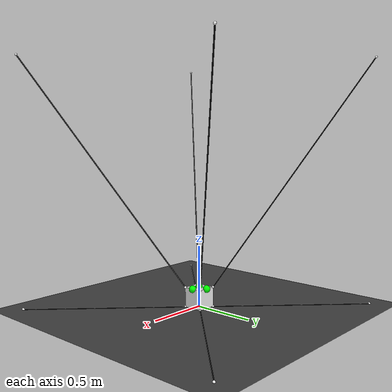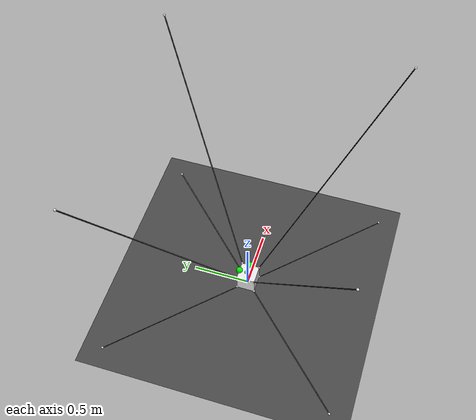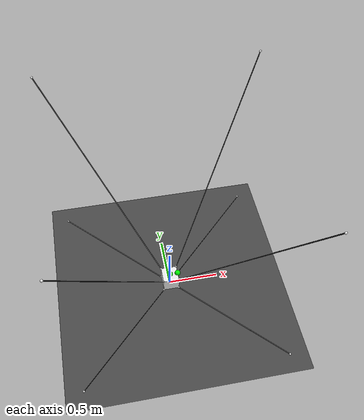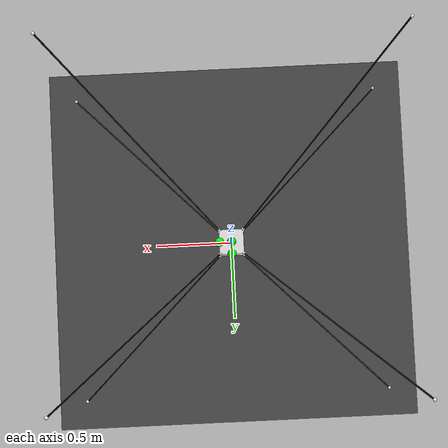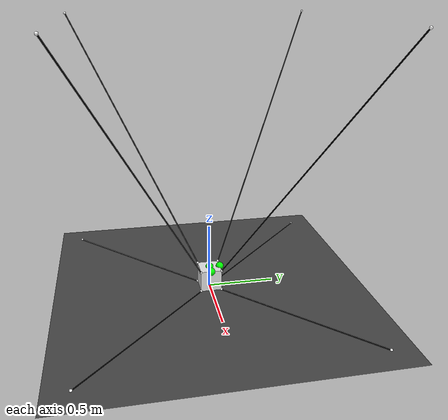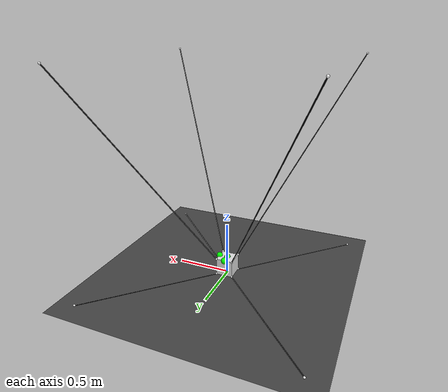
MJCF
<mujoco model="cdpr_8_cables_6_dof">
  <compiler angle="radian"/>

  <asset>
    <texture type="2d" colorspace="auto" name="texplane" builtin="checker" mark="cross" rgb1="0.25 0.25 0.25" rgb2="0.3 0.3 0.3" markrgb="0.8 0.8 0.8" width="512" height="512"/>
    <material name="matplane" texture="texplane" texuniform="true" reflectance="0.3"/>
  </asset>

  <worldbody>
    <geom name="floor" size="0 0 1" type="plane" material="matplane"/>
    <site name="proximal_anchor_0" pos="-1.005 1.01 0" size="0.01" rgba="1 1 1 1"/>
    <site name="proximal_anchor_1" pos="1.005 1.01 0" size="0.01" rgba="1 1 1 1"/>
    <site name="proximal_anchor_2" pos="1.005 -1.01 0" size="0.01" rgba="1 1 1 1"/>
    <site name="proximal_anchor_3" pos="-1.005 -1.01 0" size="0.01" rgba="1 1 1 1"/>
    <site name="proximal_anchor_4" pos="-1.005 1.01 2.03" size="0.01" rgba="1 1 1 1"/>
    <site name="proximal_anchor_5" pos="1.005 1.01 2.03" size="0.01" rgba="1 1 1 1"/>
    <site name="proximal_anchor_6" pos="1.005 -1.01 2.03" size="0.01" rgba="1 1 1 1"/>
    <site name="proximal_anchor_7" pos="-1.005 -1.01 2.03" size="0.01" rgba="1 1 1 1"/>
    <camera name="main_camera" pos="0 -3.535 3.5525" quat="0.92388 0.382683 0 0"/>
    <camera name="left_camera" pos="-1.005 0 4.669"/>
    <camera name="right_camera" pos="1.005 0 4.669"/>
    <light pos="0 0 0" dir="0 0 -1" type="directional" diffuse="0.8 0.8 0.8" specular="0.2 0.2 0.2"/>
    <body name="end_effector" pos="0 0 0.081">
      <joint type="free" limited="false" actuatorfrclimited="false"/>
      <geom size="0.08 0.0805 0.081" type="box" mass="2" rgba="0.9 0.9 0.9 1"/>
      <site name="distal_anchor_0" pos="-0.08 0.0805 -0.081" size="0.01" rgba="1 1 1 1"/>
      <site name="distal_anchor_1" pos="0.08 0.0805 -0.081" size="0.01" rgba="1 1 1 1"/>
      <site name="distal_anchor_2" pos="0.08 -0.0805 -0.081" size="0.01" rgba="1 1 1 1"/>
      <site name="distal_anchor_3" pos="-0.08 -0.0805 -0.081" size="0.01" rgba="1 1 1 1"/>
      <site name="distal_anchor_4" pos="-0.08 0.0805 0.081" size="0.01" rgba="1 1 1 1"/>
      <site name="distal_anchor_5" pos="0.08 0.0805 0.081" size="0.01" rgba="1 1 1 1"/>
      <site name="distal_anchor_6" pos="0.08 -0.0805 0.081" size="0.01" rgba="1 1 1 1"/>
      <site name="distal_anchor_7" pos="-0.08 -0.0805 0.081" size="0.01" rgba="1 1 1 1"/>
      <body name="end_effector_marker1" pos="0 0 0.081">
        <geom size="0.03" contype="0" conaffinity="0" mass="0" rgba="0 1 0 1"/>
      </body>
      <body name="end_effector_marker2" pos="0.08 0 0.081">
        <geom size="0.03" contype="0" conaffinity="0" mass="0" rgba="0 1 0 1"/>
      </body>
      <body name="end_effector_marker3" pos="0 0.0805 0.081">
        <geom size="0.03" contype="0" conaffinity="0" mass="0" rgba="0 1 0 1"/>
      </body>
    </body>
    <body pos="-1.005 1.01 0">
      <joint name="slider_joint_0" pos="0 0 0" axis="0 1 0" type="slide" range="0 5"/>
      <geom size="0.01" contype="0" conaffinity="0" mass="1" rgba="1 1 1 1"/>
      <site name="slider_site_0" pos="0 0 0" size="0.01" rgba="1 1 1 1"/>
    </body>
    <body pos="1.005 1.01 0">
      <joint name="slider_joint_1" pos="0 0 0" axis="0 1 0" type="slide" range="0 5"/>
      <geom size="0.01" contype="0" conaffinity="0" mass="1" rgba="1 1 1 1"/>
      <site name="slider_site_1" pos="0 0 0" size="0.01" rgba="1 1 1 1"/>
    </body>
    <body pos="1.005 -1.01 0">
      <joint name="slider_joint_2" pos="0 0 0" axis="0 -1 0" type="slide" range="0 5"/>
      <geom size="0.01" contype="0" conaffinity="0" mass="1" rgba="1 1 1 1"/>
      <site name="slider_site_2" pos="0 0 0" size="0.01" rgba="1 1 1 1"/>
    </body>
    <body pos="-1.005 -1.01 0">
      <joint name="slider_joint_3" pos="0 0 0" axis="0 -1 0" type="slide" range="0 5"/>
      <geom size="0.01" contype="0" conaffinity="0" mass="1" rgba="1 1 1 1"/>
      <site name="slider_site_3" pos="0 0 0" size="0.01" rgba="1 1 1 1"/>
    </body>
    <body pos="-1.005 1.01 2.03">
      <joint name="slider_joint_4" pos="0 0 0" axis="0 1 0" type="slide" range="0 5"/>
      <geom size="0.01" contype="0" conaffinity="0" mass="1" rgba="1 1 1 1"/>
      <site name="slider_site_4" pos="0 0 0" size="0.01" rgba="1 1 1 1"/>
    </body>
    <body pos="1.005 1.01 2.03">
      <joint name="slider_joint_5" pos="0 0 0" axis="0 1 0" type="slide" range="0 5"/>
      <geom size="0.01" contype="0" conaffinity="0" mass="1" rgba="1 1 1 1"/>
      <site name="slider_site_5" pos="0 0 0" size="0.01" rgba="1 1 1 1"/>
    </body>
    <body pos="1.005 -1.01 2.03">
      <joint name="slider_joint_6" pos="0 0 0" axis="0 -1 0" type="slide" range="0 5"/>
      <geom size="0.01" contype="0" conaffinity="0" mass="1" rgba="1 1 1 1"/>
      <site name="slider_site_6" pos="0 0 0" size="0.01" rgba="1 1 1 1"/>
    </body>
    <body pos="-1.005 -1.01 2.03">
      <joint name="slider_joint_7" pos="0 0 0" axis="0 -1 0" type="slide" range="0 5"/>
      <geom size="0.01" contype="0" conaffinity="0" mass="1" rgba="1 1 1 1"/>
      <site name="slider_site_7" pos="0 0 0" size="0.01" rgba="1 1 1 1"/>
    </body>
  </worldbody>

  <tendon>
    <spatial name="cable_tendon_0" limited="true" range="0 5" frictionloss="0.1" springlength="0 5" width="0.005" rgba="0 0 0 1">
      <site site="distal_anchor_0"/>
      <site site="proximal_anchor_0"/>
      <site site="slider_site_0"/>
    </spatial>
    <spatial name="cable_tendon_1" limited="true" range="0 5" frictionloss="0.1" springlength="0 5" width="0.005" rgba="0 0 0 1">
      <site site="distal_anchor_1"/>
      <site site="proximal_anchor_1"/>
      <site site="slider_site_1"/>
    </spatial>
    <spatial name="cable_tendon_2" limited="true" range="0 5" frictionloss="0.1" springlength="0 5" width="0.005" rgba="0 0 0 1">
      <site site="distal_anchor_2"/>
      <site site="proximal_anchor_2"/>
      <site site="slider_site_2"/>
    </spatial>
    <spatial name="cable_tendon_3" limited="true" range="0 5" frictionloss="0.1" springlength="0 5" width="0.005" rgba="0 0 0 1">
      <site site="distal_anchor_3"/>
      <site site="proximal_anchor_3"/>
      <site site="slider_site_3"/>
    </spatial>
    <spatial name="cable_tendon_4" limited="true" range="0 5" frictionloss="0.1" springlength="0 5" width="0.005" rgba="0 0 0 1">
      <site site="distal_anchor_4"/>
      <site site="proximal_anchor_4"/>
      <site site="slider_site_4"/>
    </spatial>
    <spatial name="cable_tendon_5" limited="true" range="0 5" frictionloss="0.1" springlength="0 5" width="0.005" rgba="0 0 0 1">
      <site site="distal_anchor_5"/>
      <site site="proximal_anchor_5"/>
      <site site="slider_site_5"/>
    </spatial>
    <spatial name="cable_tendon_6" limited="true" range="0 5" frictionloss="0.1" springlength="0 5" width="0.005" rgba="0 0 0 1">
      <site site="distal_anchor_6"/>
      <site site="proximal_anchor_6"/>
      <site site="slider_site_6"/>
    </spatial>
    <spatial name="cable_tendon_7" limited="true" range="0 5" frictionloss="0.1" springlength="0 5" width="0.005" rgba="0 0 0 1">
      <site site="distal_anchor_7"/>
      <site site="proximal_anchor_7"/>
      <site site="slider_site_7"/>
    </spatial>
  </tendon>

  <actuator>
    <general joint="slider_joint_0" ctrllimited="true" ctrlrange="0 35" biastype="affine" gainprm="500" biasprm="0 -500 1"/>
    <general joint="slider_joint_1" ctrllimited="true" ctrlrange="0 35" biastype="affine" gainprm="500" biasprm="0 -500 1"/>
    <general joint="slider_joint_2" ctrllimited="true" ctrlrange="0 35" biastype="affine" gainprm="500" biasprm="0 -500 1"/>
    <general joint="slider_joint_3" ctrllimited="true" ctrlrange="0 35" biastype="affine" gainprm="500" biasprm="0 -500 1"/>
    <general joint="slider_joint_4" ctrllimited="true" ctrlrange="0 35" biastype="affine" gainprm="500" biasprm="0 -500 1"/>
    <general joint="slider_joint_5" ctrllimited="true" ctrlrange="0 35" biastype="affine" gainprm="500" biasprm="0 -500 1"/>
    <general joint="slider_joint_6" ctrllimited="true" ctrlrange="0 35" biastype="affine" gainprm="500" biasprm="0 -500 1"/>
    <general joint="slider_joint_7" ctrllimited="true" ctrlrange="0 35" biastype="affine" gainprm="500" biasprm="0 -500 1"/>
  </actuator>

  <sensor>
    <framepos objtype="site" objname="distal_anchor_0" name="distal_pos_0"/>

    <tendonlimitfrc tendon="cable_tendon_0" name="cable_tendon_force_0"/>
    <framepos objtype="site" objname="distal_anchor_1" name="distal_pos_1"/>

    <tendonlimitfrc tendon="cable_tendon_1" name="cable_tendon_force_1"/>
    <framepos objtype="site" objname="distal_anchor_2" name="distal_pos_2"/>

    <tendonlimitfrc tendon="cable_tendon_2" name="cable_tendon_force_2"/>
    <framepos objtype="site" objname="distal_anchor_3" name="distal_pos_3"/>

    <tendonlimitfrc tendon="cable_tendon_3" name="cable_tendon_force_3"/>
    <framepos objtype="site" objname="distal_anchor_4" name="distal_pos_4"/>

    <tendonlimitfrc tendon="cable_tendon_4" name="cable_tendon_force_4"/>
    <framepos objtype="site" objname="distal_anchor_5" name="distal_pos_5"/>

    <tendonlimitfrc tendon="cable_tendon_5" name="cable_tendon_force_5"/>
    <framepos objtype="site" objname="distal_anchor_6" name="distal_pos_6"/>

    <tendonlimitfrc tendon="cable_tendon_6" name="cable_tendon_force_6"/>
    <framepos objtype="site" objname="distal_anchor_7" name="distal_pos_7"/>

    <tendonlimitfrc tendon="cable_tendon_7" name="cable_tendon_force_7"/>
    <framepos objtype="body" objname="end_effector" name="end_effector_position"/>
    <framexaxis objtype="body" objname="end_effector" name="end_effector_xv"/>
    <frameyaxis objtype="body" objname="end_effector" name="end_effector_yv"/>
    <framezaxis objtype="body" objname="end_effector" name="end_effector_zv"/>
  </sensor>
</mujoco>
